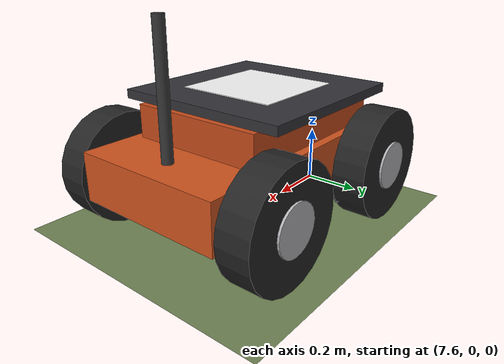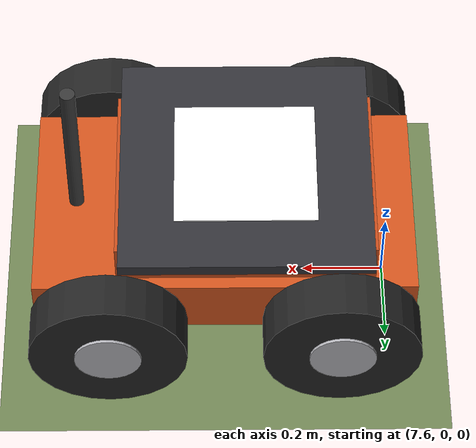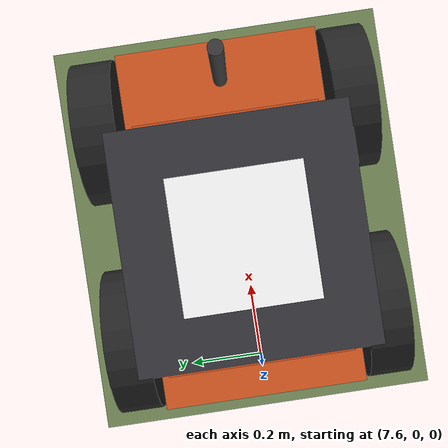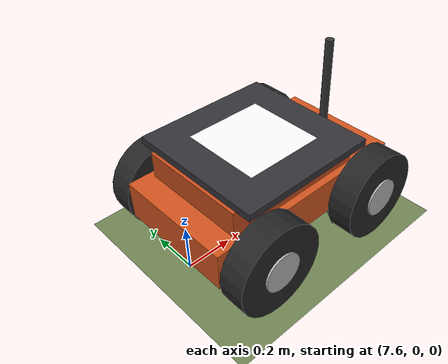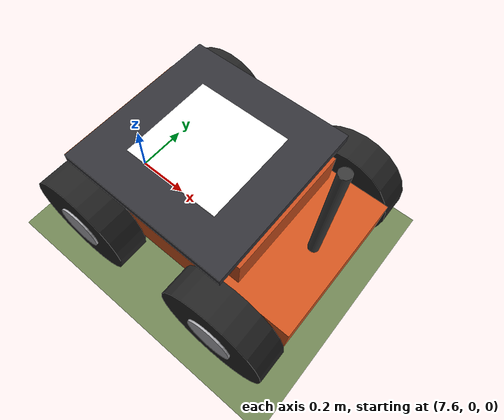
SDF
<sdf version="1.9">
 <world name="turbine_site">
  <physics name="4ms" type="ignored">
   <max_step_size>0.004</max_step_size>
   <real_time_factor>1.0</real_time_factor>
  </physics>
  <plugin filename="gz-sim-physics-system" name="gz::sim::systems::Physics"/>
  <plugin filename="gz-sim-user-commands-system" name="gz::sim::systems::UserCommands"/>
  <plugin filename="gz-sim-scene-broadcaster-system" name="gz::sim::systems::SceneBroadcaster"/>
  <plugin filename="gz-sim-contact-system" name="gz::sim::systems::Contact"/>
  <plugin filename="gz-sim-imu-system" name="gz::sim::systems::Imu"/>
  <plugin filename="gz-sim-magnetometer-system" name="gz::sim::systems::Magnetometer"/>
  <plugin filename="gz-sim-air-pressure-system" name="gz::sim::systems::AirPressure"/>
  <plugin filename="gz-sim-navsat-system" name="gz::sim::systems::NavSat"/>
  <plugin filename="gz-sim-sensors-system" name="gz::sim::systems::Sensors">
   <render_engine>ogre2</render_engine>
  </plugin>
  <scene><ambient>0.65 0.65 0.68 1</ambient><background>0.72 0.82 0.92 1</background></scene>
  <spherical_coordinates>
   <surface_model>EARTH_WGS84</surface_model>
   <world_frame_orientation>ENU</world_frame_orientation>
   <latitude_deg>12.8231</latitude_deg>
   <longitude_deg>80.0452</longitude_deg>
   <elevation>15</elevation>
  </spherical_coordinates>
  <light type="directional" name="sun">
   <pose>0 0 60 0 0 0</pose>
   <diffuse>0.92 0.92 0.90 1</diffuse>
   <specular>0.3 0.3 0.3 1</specular>
   <direction>-0.5 0.35 -0.78</direction>
  </light>
  <model name="ground_plane">
   <static>true</static>
   <link name="link">
    <collision name="collision">
     <geometry><plane><normal>0 0 1</normal><size>400 400</size></plane></geometry>
     <surface><friction><ode><mu>1.0</mu><mu2>1.0</mu2></ode></friction></surface>
    </collision>
    <visual name="visual">
     <geometry><plane><normal>0 0 1</normal><size>400 400</size></plane></geometry>
     <material><ambient>0.34 0.40 0.26 1</ambient><diffuse>0.44 0.52 0.33 1</diffuse></material>
    </visual>
   </link>
  </model>
  <model name="rover">
   <pose>8 0 0.22 0 0 3.14159</pose>
   <link name="base_link">
    <inertial>
     <mass>22.0</mass>
     <inertia><ixx>0.95</ixx><iyy>1.80</iyy><izz>2.30</izz><ixy>0</ixy><ixz>0</ixz><iyz>0</iyz></inertia>
    </inertial>
    <visual name="chassis">
     <geometry><box><size>0.92 0.52 0.16</size></box></geometry>
     <material><ambient>0.62 0.22 0.08 1</ambient><diffuse>0.82 0.33 0.12 1</diffuse></material>
    </visual>
    <visual name="upper_body">
     <pose>0.05 0 0.13 0 0 0</pose>
     <geometry><box><size>0.62 0.46 0.12</size></box></geometry>
     <material><ambient>0.58 0.20 0.07 1</ambient><diffuse>0.78 0.30 0.11 1</diffuse></material>
    </visual>
    <visual name="deck">
     <pose>0.05 0 0.21 0 0 0</pose>
     <geometry><box><size>0.6 0.6 0.03</size></box></geometry>
     <material><ambient>0.12 0.12 0.13 1</ambient><diffuse>0.20 0.20 0.22 1</diffuse></material>
    </visual>
    <visual name="deck_marker">
     <pose>0.05 0 0.226 0 0 0</pose>
     <geometry><box><size>0.34 0.34 0.004</size></box></geometry>
     <material><ambient>0.9 0.9 0.9 1</ambient><diffuse>0.98 0.98 0.98 1</diffuse></material>
    </visual>
    <visual name="mast">
     <pose>-0.36 0 0.24 0 0 0</pose>
     <geometry><cylinder><radius>0.018</radius><length>0.5</length></cylinder></geometry>
     <material><ambient>0.12 0.12 0.12 1</ambient><diffuse>0.22 0.22 0.22 1</diffuse></material>
    </visual>
    <visual name="arm_fl">
     <pose>0.17 0.24 -0.05 0.6 0 0</pose>
     <geometry><box><size>0.09 0.05 0.20</size></box></geometry>
     <material><ambient>0.25 0.25 0.27 1</ambient><diffuse>0.35 0.35 0.38 1</diffuse></material>
    </visual>
    <visual name="arm_fr">
     <pose>0.17 -0.24 -0.05 -0.6 0 0</pose>
     <geometry><box><size>0.09 0.05 0.20</size></box></geometry>
     <material><ambient>0.25 0.25 0.27 1</ambient><diffuse>0.35 0.35 0.38 1</diffuse></material>
    </visual>
    <visual name="arm_rl">
     <pose>-0.17 0.24 -0.05 0.6 0 0</pose>
     <geometry><box><size>0.09 0.05 0.20</size></box></geometry>
     <material><ambient>0.25 0.25 0.27 1</ambient><diffuse>0.35 0.35 0.38 1</diffuse></material>
    </visual>
    <visual name="arm_rr">
     <pose>-0.17 -0.24 -0.05 -0.6 0 0</pose>
     <geometry><box><size>0.09 0.05 0.20</size></box></geometry>
     <material><ambient>0.25 0.25 0.27 1</ambient><diffuse>0.35 0.35 0.38 1</diffuse></material>
    </visual>
    <collision name="chassis_collision"><geometry><box><size>0.92 0.52 0.16</size></box></geometry></collision>
    <collision name="upper_body_collision">
     <pose>0.05 0 0.13 0 0 0</pose>
     <geometry><box><size>0.62 0.46 0.12</size></box></geometry>
    </collision>
    <collision name="deck_collision">
     <pose>0.05 0 0.21 0 0 0</pose>
     <geometry><box><size>0.6 0.6 0.03</size></box></geometry>
     <surface><friction><ode><mu>1.6</mu><mu2>1.6</mu2></ode></friction></surface>
    </collision>
   </link>
   <link name="wheel_fl">
    <pose>0.28 0.33 -0.03 -1.5707 0 0</pose>
    <inertial>
     <mass>1.1</mass>
     <inertia><ixx>0.007</ixx><iyy>0.007</iyy><izz>0.012</izz><ixy>0</ixy><ixz>0</ixz><iyz>0</iyz></inertia>
    </inertial>
    <visual name="tyre">
     <geometry><cylinder><radius>0.19</radius><length>0.11</length></cylinder></geometry>
     <material><ambient>0.07 0.07 0.07 1</ambient><diffuse>0.14 0.14 0.14 1</diffuse></material>
    </visual>
    <visual name="hubcap">
     <pose>0 0 0.056 0 0 0</pose>
     <geometry><cylinder><radius>0.08</radius><length>0.012</length></cylinder></geometry>
     <material><ambient>0.5 0.5 0.52 1</ambient><diffuse>0.7 0.7 0.72 1</diffuse></material>
    </visual>
    <collision name="collision">
     <geometry><cylinder><radius>0.19</radius><length>0.11</length></cylinder></geometry>
     <surface><friction><ode><mu>1.1</mu><mu2>0.35</mu2></ode></friction></surface>
    </collision>
   </link>
   <link name="wheel_fr">
    <pose>0.28 -0.33 -0.03 -1.5707 0 0</pose>
    <inertial>
     <mass>1.1</mass>
     <inertia><ixx>0.007</ixx><iyy>0.007</iyy><izz>0.012</izz><ixy>0</ixy><ixz>0</ixz><iyz>0</iyz></inertia>
    </inertial>
    <visual name="tyre">
     <geometry><cylinder><radius>0.19</radius><length>0.11</length></cylinder></geometry>
     <material><ambient>0.07 0.07 0.07 1</ambient><diffuse>0.14 0.14 0.14 1</diffuse></material>
    </visual>
    <visual name="hubcap">
     <pose>0 0 -0.056 0 0 0</pose>
     <geometry><cylinder><radius>0.08</radius><length>0.012</length></cylinder></geometry>
     <material><ambient>0.5 0.5 0.52 1</ambient><diffuse>0.7 0.7 0.72 1</diffuse></material>
    </visual>
    <collision name="collision">
     <geometry><cylinder><radius>0.19</radius><length>0.11</length></cylinder></geometry>
     <surface><friction><ode><mu>1.1</mu><mu2>0.35</mu2></ode></friction></surface>
    </collision>
   </link>
   <link name="wheel_rl">
    <pose>-0.28 0.33 -0.03 -1.5707 0 0</pose>
    <inertial>
     <mass>1.1</mass>
     <inertia><ixx>0.007</ixx><iyy>0.007</iyy><izz>0.012</izz><ixy>0</ixy><ixz>0</ixz><iyz>0</iyz></inertia>
    </inertial>
    <visual name="tyre">
     <geometry><cylinder><radius>0.19</radius><length>0.11</length></cylinder></geometry>
     <material><ambient>0.07 0.07 0.07 1</ambient><diffuse>0.14 0.14 0.14 1</diffuse></material>
    </visual>
    <visual name="hubcap">
     <pose>0 0 0.056 0 0 0</pose>
     <geometry><cylinder><radius>0.08</radius><length>0.012</length></cylinder></geometry>
     <material><ambient>0.5 0.5 0.52 1</ambient><diffuse>0.7 0.7 0.72 1</diffuse></material>
    </visual>
    <collision name="collision">
     <geometry><cylinder><radius>0.19</radius><length>0.11</length></cylinder></geometry>
     <surface><friction><ode><mu>1.1</mu><mu2>0.35</mu2></ode></friction></surface>
    </collision>
   </link>
   <link name="wheel_rr">
    <pose>-0.28 -0.33 -0.03 -1.5707 0 0</pose>
    <inertial>
     <mass>1.1</mass>
     <inertia><ixx>0.007</ixx><iyy>0.007</iyy><izz>0.012</izz><ixy>0</ixy><ixz>0</ixz><iyz>0</iyz></inertia>
    </inertial>
    <visual name="tyre">
     <geometry><cylinder><radius>0.19</radius><length>0.11</length></cylinder></geometry>
     <material><ambient>0.07 0.07 0.07 1</ambient><diffuse>0.14 0.14 0.14 1</diffuse></material>
    </visual>
    <visual name="hubcap">
     <pose>0 0 -0.056 0 0 0</pose>
     <geometry><cylinder><radius>0.08</radius><length>0.012</length></cylinder></geometry>
     <material><ambient>0.5 0.5 0.52 1</ambient><diffuse>0.7 0.7 0.72 1</diffuse></material>
    </visual>
    <collision name="collision">
     <geometry><cylinder><radius>0.19</radius><length>0.11</length></cylinder></geometry>
     <surface><friction><ode><mu>1.1</mu><mu2>0.35</mu2></ode></friction></surface>
    </collision>
   </link>
   <joint name="wheel_fl_joint" type="revolute">
    <parent>base_link</parent>
    <child>wheel_fl</child>
    <axis><xyz expressed_in="__model__">0 1 0</xyz><limit><lower>-1e16</lower><upper>1e16</upper></limit></axis>
   </joint>
   <joint name="wheel_fr_joint" type="revolute">
    <parent>base_link</parent>
    <child>wheel_fr</child>
    <axis><xyz expressed_in="__model__">0 1 0</xyz><limit><lower>-1e16</lower><upper>1e16</upper></limit></axis>
   </joint>
   <joint name="wheel_rl_joint" type="revolute">
    <parent>base_link</parent>
    <child>wheel_rl</child>
    <axis><xyz expressed_in="__model__">0 1 0</xyz><limit><lower>-1e16</lower><upper>1e16</upper></limit></axis>
   </joint>
   <joint name="wheel_rr_joint" type="revolute">
    <parent>base_link</parent>
    <child>wheel_rr</child>
    <axis><xyz expressed_in="__model__">0 1 0</xyz><limit><lower>-1e16</lower><upper>1e16</upper></limit></axis>
   </joint>
   <plugin filename="gz-sim-diff-drive-system" name="gz::sim::systems::DiffDrive">
    <left_joint>wheel_fl_joint</left_joint>
    <left_joint>wheel_rl_joint</left_joint>
    <right_joint>wheel_fr_joint</right_joint>
    <right_joint>wheel_rr_joint</right_joint>
    <wheel_separation>0.66</wheel_separation>
    <wheel_radius>0.19</wheel_radius>
    <max_linear_acceleration>1.5</max_linear_acceleration>
    <topic>/rover/cmd_vel</topic>
    <odom_topic>/rover/odometry</odom_topic>
    <tf_topic>/rover/tf</tf_topic>
    <frame_id>odom</frame_id>
    <child_frame_id>rover/base_link</child_frame_id>
    <odom_publish_frequency>30</odom_publish_frequency>
   </plugin>
  </model>
 </world>
</sdf>
